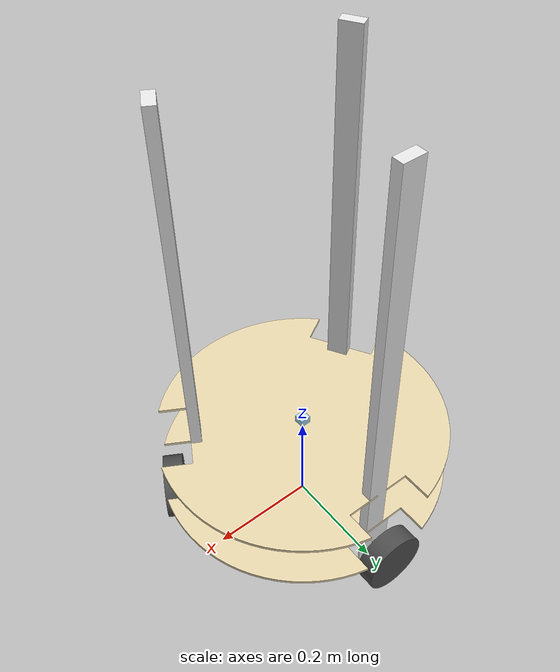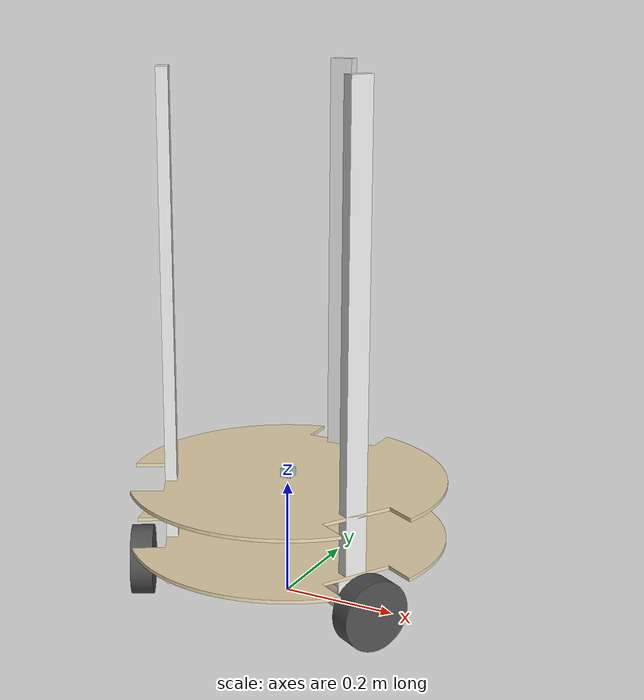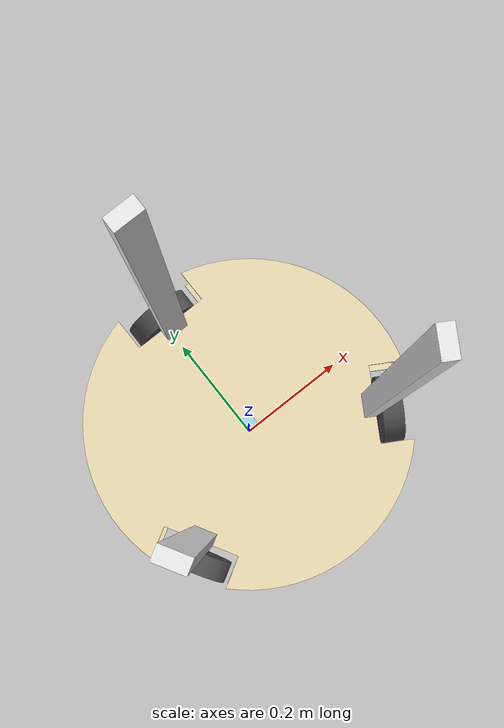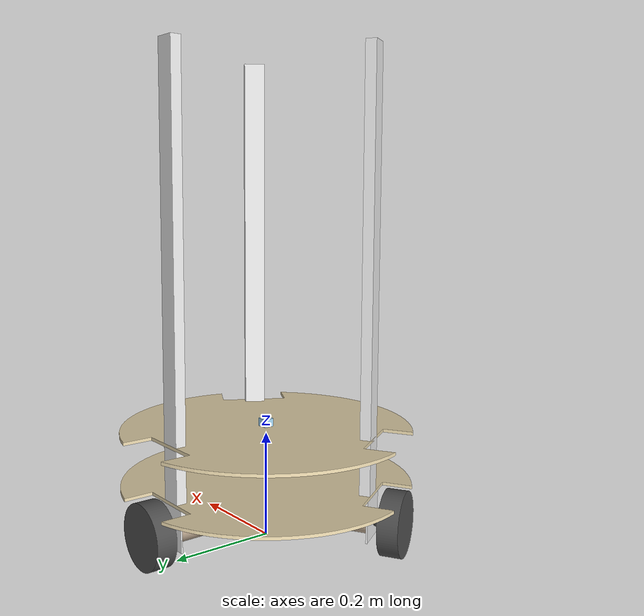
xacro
<?xml version="1.0"?>
<robot name="robot" xmlns:xacro="http://www.ros.org/wiki/xacro">

    <xacro:include filename="$(find simulation_pkg)/urdf/robot.gazebo" />

    <!-- root link, on the ground just below the model origin -->
    <link name="base_footprint">
        <visual>
            <origin xyz="0 0 0" rpy="0 0 0" />
            <geometry>
                <box size="0.001 0.001 0.001" />
            </geometry>
        </visual>
    </link>

    <joint name="base_link_joint" type="fixed">
        <origin xyz="0.0 0 0.105" rpy="0 0 0" />
        <parent link="base_footprint" />
        <child link="base_link" />
    </joint>

    <link name="base_link">
        <visual>
            <origin xyz="0.040970128253102346128 0.042066415995359325575 0.12400000000000016565"
                rpy="3.141592653589793116 -0 2.7755575615628913511e-16" />
            <geometry>
                <mesh filename="file://$(find simulation_pkg)/meshes/stl/part_1.stl" />
            </geometry>
            <material name="part_1_material">
                <color
                    rgba="0.61568627450980395466 0.81176470588235294379 0.92941176470588238168 1.0" />
            </material>
        </visual>
        <collision>
            <origin xyz="0.040970128253102346128 0.042066415995359325575 0.12400000000000016565"
                rpy="3.141592653589793116 -0 2.7755575615628913511e-16" />
            <geometry>
                <mesh filename="file://$(find simulation_pkg)/meshes/stl/part_1.stl" />
            </geometry>
        </collision>
        <visual>
            <origin xyz="0.038431848347187068382 -0.013246810296550448616 0.098000000000000142553"
                rpy="0 -0 2.7755575615628913511e-16" />
            <geometry>
                <mesh filename="file://$(find simulation_pkg)/meshes/stl/part_2.stl" />
            </geometry>
            <material name="part_2_material">
                <color
                    rgba="0.64705882352941179736 0.64705882352941179736 0.64705882352941179736 1.0" />
            </material>
        </visual>
        <collision>
            <origin xyz="0.038431848347187068382 -0.013246810296550448616 0.098000000000000142553"
                rpy="0 -0 2.7755575615628913511e-16" />
            <geometry>
                <mesh filename="file://$(find simulation_pkg)/meshes/stl/part_2.stl" />
            </geometry>
        </collision>
        <visual>
            <origin xyz="-0.17959202910435595468 -0.10368750634771083108 -0.010000000000000000208"
                rpy="0 -0 -1.0471975511965976313" />
            <geometry>
                <mesh filename="file://$(find simulation_pkg)/meshes/stl/perfil_motores.stl" />
            </geometry>
            <material name="perfil_motores_material">
                <color
                    rgba="0.90196078431372550543 0.90196078431372550543 0.90196078431372550543 1.0" />
            </material>
        </visual>
        <collision>
            <origin xyz="-0.17959202910435595468 -0.10368750634771083108 -0.010000000000000000208"
                rpy="0 -0 -1.0471975511965976313" />
            <geometry>
                <mesh filename="file://$(find simulation_pkg)/meshes/stl/perfil_motores.stl" />
            </geometry>
        </collision>
        <visual>
            <origin xyz="0.13429890048642967315 -0.07753750634771117145 -0.043642622765278749064"
                rpy="0 -0 1.0471975511965976313" />
            <geometry>
                <mesh filename="file://$(find simulation_pkg)/meshes/stl/motor.stl" />
            </geometry>
            <material name="motor_material">
                <color rgba="0.7568627450980391913 0.6745098039215686736 0.5803921568627451455 1.0" />
            </material>
        </visual>
        <collision>
            <origin xyz="0.13429890048642967315 -0.07753750634771117145 -0.043642622765278749064"
                rpy="0 -0 1.0471975511965976313" />
            <geometry>
                <mesh filename="file://$(find simulation_pkg)/meshes/stl/motor.stl" />
            </geometry>
        </collision>
        <visual>
            <origin xyz="-0.17352985127786493824 -0.1001875063477108696 0.0060000000000000001249"
                rpy="0 -0 -1.0471975511965976313" />
            <geometry>
                <mesh filename="file://$(find simulation_pkg)/meshes/stl/perfil_colunas.stl" />
            </geometry>
            <material name="perfil_colunas_material">
                <color
                    rgba="0.90196078431372550543 0.90196078431372550543 0.90196078431372550543 1.0" />
            </material>
        </visual>
        <collision>
            <origin xyz="-0.17352985127786493824 -0.1001875063477108696 0.0060000000000000001249"
                rpy="0 -0 -1.0471975511965976313" />
            <geometry>
                <mesh filename="file://$(find simulation_pkg)/meshes/stl/perfil_colunas.stl" />
            </geometry>
        </collision>
        <visual>
            <origin xyz="0 0 0" rpy="0 -0 0" />
            <geometry>
                <mesh filename="file://$(find simulation_pkg)/meshes/stl/mdf_motores.stl" />
            </geometry>
            <material name="mdf_motores_material">
                <color
                    rgba="0.90196078431372550543 0.83529411764705885357 0.6745098039215686736 1.0" />
            </material>
        </visual>
        <collision>
            <origin xyz="0 0 0" rpy="0 -0 0" />
            <geometry>
                <mesh filename="file://$(find simulation_pkg)/meshes/stl/mdf_motores.stl" />
            </geometry>
        </collision>
        <visual>
            <origin xyz="-0.13429890048642978417 -0.077537506347710782872 -0.043642622765278749064"
                rpy="0 -0 -1.0471975511965976313" />
            <geometry>
                <mesh filename="file://$(find simulation_pkg)/meshes/stl/motor.stl" />
            </geometry>
            <material name="motor_material">
                <color rgba="0.7568627450980391913 0.6745098039215686736 0.5803921568627451455 1.0" />
            </material>
        </visual>
        <collision>
            <origin xyz="-0.13429890048642978417 -0.077537506347710782872 -0.043642622765278749064"
                rpy="0 -0 -1.0471975511965976313" />
            <geometry>
                <mesh filename="file://$(find simulation_pkg)/meshes/stl/motor.stl" />
            </geometry>
        </collision>
        <visual>
            <origin xyz="0.17959202910435578815 -0.10368750634771116415 -0.010000000000000000208"
                rpy="0 -0 1.0471975511965976313" />
            <geometry>
                <mesh filename="file://$(find simulation_pkg)/meshes/stl/perfil_motores.stl" />
            </geometry>
            <material name="perfil_motores_material">
                <color
                    rgba="0.90196078431372550543 0.90196078431372550543 0.90196078431372550543 1.0" />
            </material>
        </visual>
        <collision>
            <origin xyz="0.17959202910435578815 -0.10368750634771116415 -0.010000000000000000208"
                rpy="0 -0 1.0471975511965976313" />
            <geometry>
                <mesh filename="file://$(find simulation_pkg)/meshes/stl/perfil_motores.stl" />
            </geometry>
        </collision>
        <visual>
            <origin xyz="2.498001805406602216e-16 0.20037501269542196125 0.0060000000000000001249"
                rpy="0 -0 3.141592653589793116" />
            <geometry>
                <mesh filename="file://$(find simulation_pkg)/meshes/stl/perfil_colunas.stl" />
            </geometry>
            <material name="perfil_colunas_material">
                <color
                    rgba="0.90196078431372550543 0.90196078431372550543 0.90196078431372550543 1.0" />
            </material>
        </visual>
        <collision>
            <origin xyz="2.498001805406602216e-16 0.20037501269542196125 0.0060000000000000001249"
                rpy="0 -0 3.141592653589793116" />
            <geometry>
                <mesh filename="file://$(find simulation_pkg)/meshes/stl/perfil_colunas.stl" />
            </geometry>
        </collision>
        <visual>
            <origin xyz="2.7755575615628913511e-16 0.20737501269542196747 -0.010000000000000000208"
                rpy="0 -0 3.141592653589793116" />
            <geometry>
                <mesh filename="file://$(find simulation_pkg)/meshes/stl/perfil_motores.stl" />
            </geometry>
            <material name="perfil_motores_material">
                <color
                    rgba="0.90196078431372550543 0.90196078431372550543 0.90196078431372550543 1.0" />
            </material>
        </visual>
        <collision>
            <origin xyz="2.7755575615628913511e-16 0.20737501269542196747 -0.010000000000000000208"
                rpy="0 -0 3.141592653589793116" />
            <geometry>
                <mesh filename="file://$(find simulation_pkg)/meshes/stl/perfil_motores.stl" />
            </geometry>
        </collision>
        <visual>
            <origin
                xyz="2.7755575615628913511e-17 -6.9388939039072283776e-17 0.10300000000000014699"
                rpy="0 -0 2.7755575615628913511e-16" />
            <geometry>
                <mesh filename="file://$(find simulation_pkg)/meshes/stl/mdf_motores.stl" />
            </geometry>
            <material name="mdf_motores_material">
                <color
                    rgba="0.90196078431372550543 0.83529411764705885357 0.6745098039215686736 1.0" />
            </material>
        </visual>
        <collision>
            <origin
                xyz="2.7755575615628913511e-17 -6.9388939039072283776e-17 0.10300000000000014699"
                rpy="0 -0 2.7755575615628913511e-16" />
            <geometry>
                <mesh filename="file://$(find simulation_pkg)/meshes/stl/mdf_motores.stl" />
            </geometry>
        </collision>
        <visual>
            <origin xyz="2.9143354396410359186e-16 0.15507501269542195432 -0.04364262276527871437"
                rpy="0 -0 3.141592653589793116" />
            <geometry>
                <mesh filename="file://$(find simulation_pkg)/meshes/stl/motor.stl" />
            </geometry>
            <material name="motor_material">
                <color rgba="0.7568627450980391913 0.6745098039215686736 0.5803921568627451455 1.0" />
            </material>
        </visual>
        <collision>
            <origin xyz="2.9143354396410359186e-16 0.15507501269542195432 -0.04364262276527871437"
                rpy="0 -0 3.141592653589793116" />
            <geometry>
                <mesh filename="file://$(find simulation_pkg)/meshes/stl/motor.stl" />
            </geometry>
        </collision>
        <visual>
            <origin xyz="0.17352985127786474395 -0.10018750634771117491 0.0060000000000000001249"
                rpy="0 -0 1.0471975511965976313" />
            <geometry>
                <mesh filename="file://$(find simulation_pkg)/meshes/stl/perfil_colunas.stl" />
            </geometry>
            <material name="perfil_colunas_material">
                <color
                    rgba="0.90196078431372550543 0.90196078431372550543 0.90196078431372550543 1.0" />
            </material>
        </visual>
        <collision>
            <origin xyz="0.17352985127786474395 -0.10018750634771117491 0.0060000000000000001249"
                rpy="0 -0 1.0471975511965976313" />
            <geometry>
                <mesh filename="file://$(find simulation_pkg)/meshes/stl/perfil_colunas.stl" />
            </geometry>
        </collision>
        <inertial>
            <origin xyz="2.904943988343017289e-17 -1.8674639925062256642e-17 0.12540826286054423955"
                rpy="0 0 0" />
            <mass value="6.6882194661600005148" />
            <inertia ixx="0.4438090748498306759" ixy="-1.0408340855860842566e-17"
                ixz="1.3877787807814456755e-17" iyy="0.4438090748498306759"
                iyz="3.4694469519536141888e-18" izz="0.21703486356250170641" />
        </inertial>
    </link>

    <link name="roda">
        <visual>
            <origin
                xyz="1.447310149194805253e-17 6.9388939039072283776e-18 -0.019000000000000016875"
                rpy="1.570796326794896558 -4.0636983087920363798e-17 0" />
            <geometry>
                <mesh filename="file://$(find simulation_pkg)/meshes/stl/roda.stl" />
            </geometry>
            <material name="roda_material">
                <color
                    rgba="0.30196078431372547213 0.30196078431372547213 0.30196078431372547213 1.0" />
            </material>
        </visual>
        <collision>
            <origin
                xyz="1.447310149194805253e-17 6.9388939039072283776e-18 -0.019000000000000016875"
                rpy="1.570796326794896558 -4.0636983087920363798e-17 0" />
            <geometry>
                <mesh filename="file://$(find simulation_pkg)/meshes/stl/roda.stl" />
            </geometry>
        </collision>
        <inertial>
            <origin xyz="1.4471921102810890316e-17 2.0994022695976859463e-18 -0.018457929616132112"
                rpy="0 0 0" />
            <mass value="0.28213445289600003196" />
            <inertia ixx="0.00028668585825496428711" ixy="0" ixz="4.238223762553882937e-21"
                iyy="0.00028668585825496428711" iyz="0" izz="0.00049830179002104308967" />
        </inertial>
    </link>

    <joint name="wheel1_speed" type="continuous">
        <origin xyz="0.20254170230464341174 -0.11693750634771118979 -0.043642622765278742125"
            rpy="-1.570796326794896558 -0 1.0471975511965976313" />
        <parent link="base_link" />
        <child link="roda" />
        <axis xyz="0 0 1" />
        <limit effort="1" velocity="20" />
        <joint_properties friction="0.0" />
    </joint>

    <link name="roda_2">
        <visual>
            <origin
                xyz="1.8127225214553025683e-17 6.9388939039072283776e-18 -0.019000000000000016875"
                rpy="1.570796326794896558 -2.1777293602491688218e-17 0" />
            <geometry>
                <mesh filename="file://$(find simulation_pkg)/meshes/stl/roda.stl" />
            </geometry>
            <material name="roda_material">
                <color
                    rgba="0.30196078431372547213 0.30196078431372547213 0.30196078431372547213 1.0" />
            </material>
        </visual>
        <collision>
            <origin
                xyz="1.8127225214553025683e-17 6.9388939039072283776e-18 -0.019000000000000016875"
                rpy="1.570796326794896558 -2.1777293602491688218e-17 0" />
            <geometry>
                <mesh filename="file://$(find simulation_pkg)/meshes/stl/roda.stl" />
            </geometry>
        </collision>
        <inertial>
            <origin xyz="1.8100274740526629763e-17 2.0994022695976859463e-18 -0.018457929616132112"
                rpy="0 0 0" />
            <mass value="0.28213445289600003196" />
            <inertia ixx="0.00028668585825496428711" ixy="0" ixz="-2.4857903690799495105e-20"
                iyy="0.00028668585825496428711" iyz="0" izz="0.00049830179002104308967" />
        </inertial>
    </link>

    <joint name="wheel2_speed" type="continuous">
        <origin xyz="-0.202541702304643495 -0.1169375063477107457 -0.043642622765278749064"
            rpy="-1.570796326794896558 -0 -1.0471975511965976313" />
        <parent link="base_link" />
        <child link="roda_2" />
        <axis xyz="0 0 1" />
        <limit effort="1" velocity="20" />
        <joint_properties friction="0.0" />
    </joint>

    <link name="roda_3">
        <visual>
            <origin xyz="0 6.9388939039072283776e-18 -0.01899999999999998912"
                rpy="1.570796326794896558 -0 0" />
            <geometry>
                <mesh filename="file://$(find simulation_pkg)/meshes/stl/roda.stl" />
            </geometry>
            <material name="roda_material">
                <color
                    rgba="0.30196078431372547213 0.30196078431372547213 0.30196078431372547213 1.0" />
            </material>
        </visual>
        <collision>
            <origin xyz="0 6.9388939039072283776e-18 -0.01899999999999998912"
                rpy="1.570796326794896558 -0 0" />
            <geometry>
                <mesh filename="file://$(find simulation_pkg)/meshes/stl/roda.stl" />
            </geometry>
        </collision>
        <inertial>
            <origin
                xyz="6.8824568980111710152e-21 2.0994022695976859463e-18 -0.018457929616132084244"
                rpy="0 0 0" />
            <mass value="0.28213445289600003196" />
            <inertia ixx="0.00028668585825496428711" ixy="0" ixz="0" iyy="0.00028668585825496428711"
                iyz="0" izz="0.00049830179002104330651" />
        </inertial>
    </link>

    <joint name="wheel3_speed" type="continuous">
        <origin xyz="2.9143354396410359186e-16 0.23387501269542196325 -0.04364262276527871437"
            rpy="1.570796326794896558 -0 0" />
        <parent link="base_link" />
        <child link="roda_3" />
        <axis xyz="0 0 1" />
        <limit effort="1" velocity="20" />
        <joint_properties friction="0.0" />
    </joint>

</robot>

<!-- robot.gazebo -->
<robot name="robot" xmlns:xacro="http://www.ros.org/wiki/xacro">

  <joint name="lidar_link_joint" type="fixed">
    <origin xyz="0.0 0.0 0.13400000000000016565"
      rpy="0 0 0" />
    <parent link="base_link" />
    <child link="lidar_link" />
  </joint>

  <link name="lidar_link"></link>

  <joint name="imu_link_joint" type="fixed">
    <origin xyz="0.0 0.0 0.09400000000000016565"
      rpy="0 0 0" />
    <parent link="base_link" />
    <child link="imu_link" />
  </joint>

  <link name="imu_link"></link>

  <gazebo reference="lidar_link">
    <sensor type="ray" name="head_hokuyo_sensor">
      <visualize> false </visualize>
      <updateRate>30</updateRate>
      <ray>
        <scan>
          <horizontal>
            <samples>920</samples>
            <resolution>1</resolution>
            <min_angle>-3.14</min_angle>
            <max_angle>3.14</max_angle>
          </horizontal>
        </scan>
        <range>
          <min>0.1</min>
          <max>40.0</max>
          <resolution>0.05</resolution>
        </range>
        <noise>
          <type>gaussian</type>
          <mean>0.0</mean>
          <stddev>0.01</stddev>
        </noise>
      </ray>

      <plugin name="gazebo_ros_head_hokuyo_controlle" filename="libgazebo_ros_ray_sensor.so">
        <ros>
          <remapping>~/out:=/scan</remapping>
        </ros>
        <output_type>sensor_msgs/LaserScan</output_type>
      </plugin>
    </sensor>
  </gazebo>

  <gazebo>
    <plugin name="object_controller" filename="libgazebo_ros_planar_move.so">
      <commandTopic>cmd_vel</commandTopic>
      <odometryTopic>odom</odometryTopic>
      <odometryFrame>odom</odometryFrame>
      <odometryRate>20.0</odometryRate>
      <robotBaseFrame>base_footprint</robotBaseFrame>
    </plugin>
  </gazebo>

  <gazebo reference="imu_link">
    <gravity>true</gravity>
    <sensor name="imu_sensor" type="imu">
      <always_on>true</always_on>
      <update_rate>100</update_rate>
      <visualize>true</visualize>
      <topic>__default_topic__</topic>
      <plugin filename="libgazebo_ros_imu_sensor.so" name="imu_plugin">
        <topicName>imu</topicName>
        <bodyName>imu_link</bodyName>
        <updateRateHZ>10.0</updateRateHZ>
        <gaussianNoise>0.0</gaussianNoise>
        <xyzOffset>0 0 0</xyzOffset>
        <rpyOffset>0 0 0</rpyOffset>
        <frameName>imu_link</frameName>
        <initialOrientationAsReference>false</initialOrientationAsReference>
      </plugin>
      <pose>0 0 0 0 0 0</pose>
    </sensor>
  </gazebo>

</robot>
